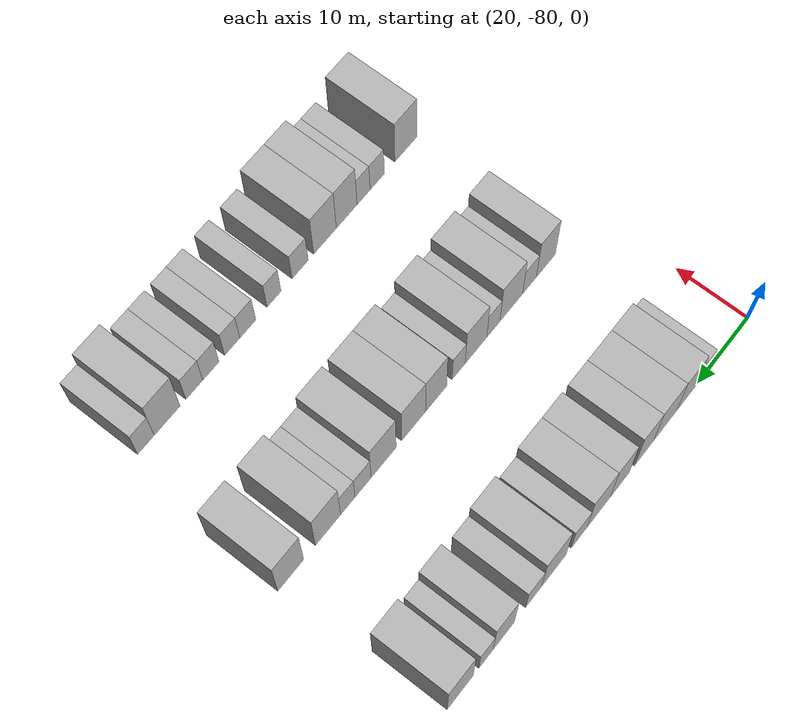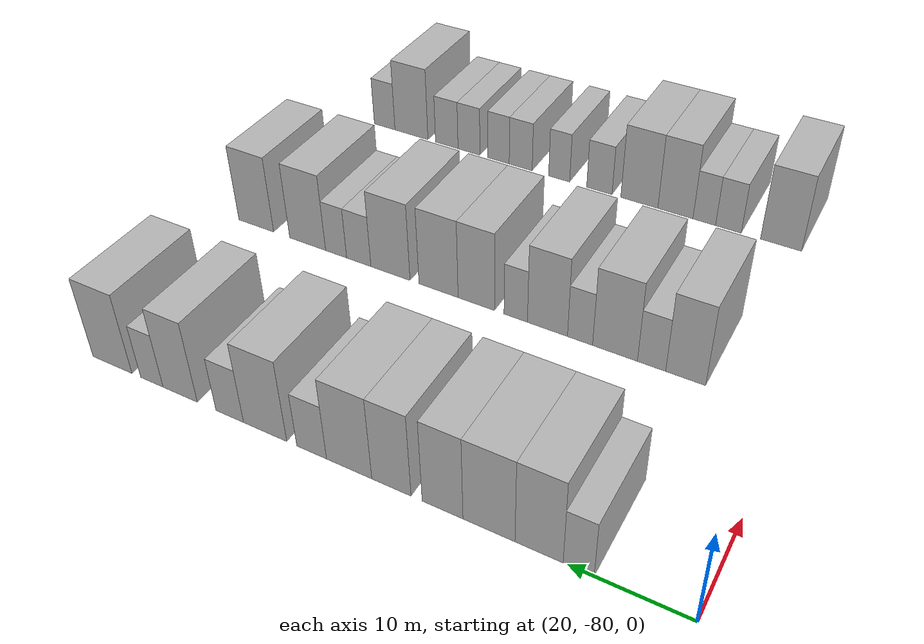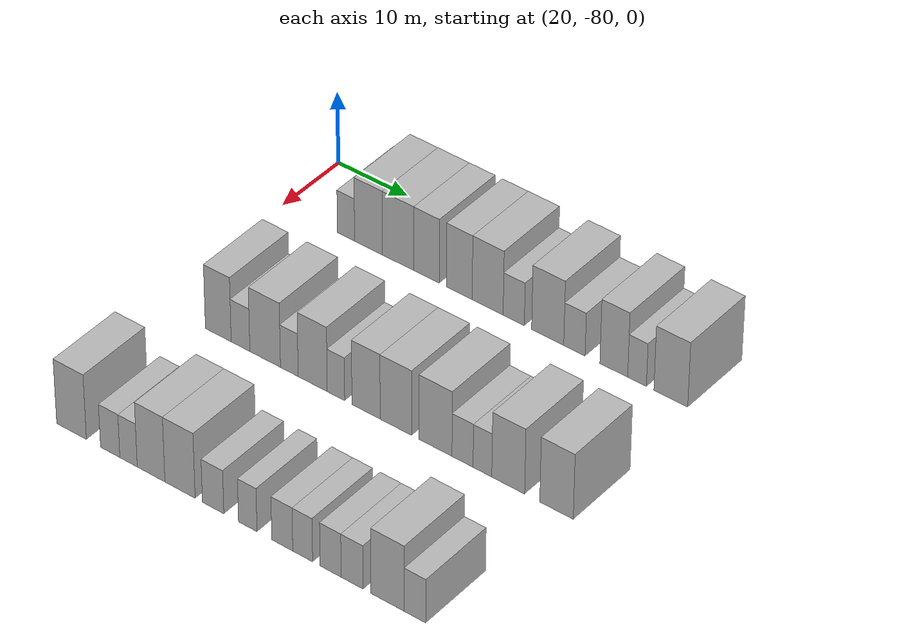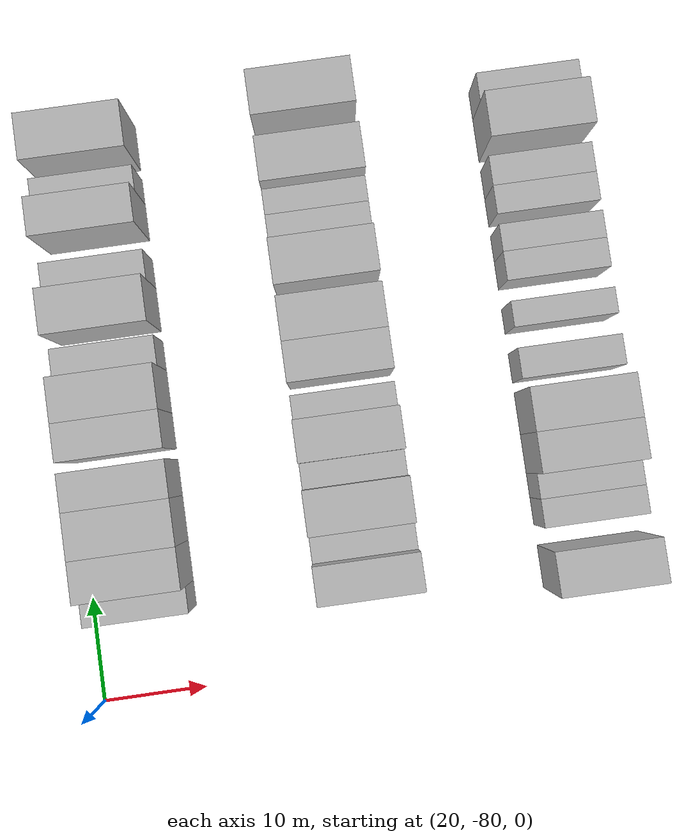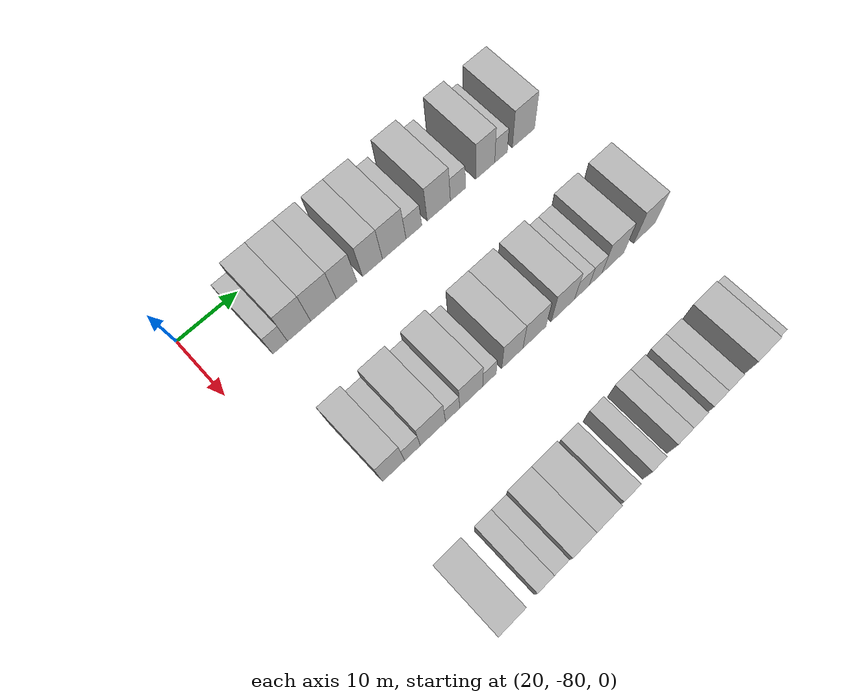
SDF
<sdf version="1.6">
 <world name="default">
  <model name="building_80">
   <static>1</static>
   <pose>25.0000 -70.8744 0 0.000000 0.000000 0.000000</pose>
   <link name="link">
    <pose>0 0 3.00 0 0 0</pose>
    <collision name="collision"><geometry><box><size>10.0000 2.4681 6.0000</size></box></geometry></collision>
    <visual name="visual">
     <cast_shadows>0</cast_shadows>
     <geometry><box><size>10.0000 2.4681 6.0000</size></box></geometry>
     <material>
      <script>
       <uri>model://HANNAS_wall/materials/scripts</uri>
       <uri>model://HANNAS_wall/materials/textures</uri>
       <name>vrc/HANNAS_wall</name>
      </script>
     </material>
    </visual>
   </link>
  </model>
  <model name="building_81">
   <static>1</static>
   <pose>25.0000 -67.6625 0 0.000000 0.000000 0.000000</pose>
   <link name="link">
    <pose>0 0 4.50 0 0 0</pose>
    <collision name="collision"><geometry><box><size>10.0000 3.9556 9.0000</size></box></geometry></collision>
    <visual name="visual">
     <cast_shadows>0</cast_shadows>
     <geometry><box><size>10.0000 3.9556 9.0000</size></box></geometry>
     <material>
      <script>
       <uri>model://HANNAS_wall/materials/scripts</uri>
       <uri>model://HANNAS_wall/materials/textures</uri>
       <name>vrc/HANNAS_wall</name>
      </script>
     </material>
    </visual>
   </link>
  </model>
  <model name="building_82">
   <static>1</static>
   <pose>25.0000 -63.4685 0 0.000000 0.000000 0.000000</pose>
   <link name="link">
    <pose>0 0 4.50 0 0 0</pose>
    <collision name="collision"><geometry><box><size>10.0000 4.4324 9.0000</size></box></geometry></collision>
    <visual name="visual">
     <cast_shadows>0</cast_shadows>
     <geometry><box><size>10.0000 4.4324 9.0000</size></box></geometry>
     <material>
      <script>
       <uri>model://HANNAS_wall/materials/scripts</uri>
       <uri>model://HANNAS_wall/materials/textures</uri>
       <name>vrc/HANNAS_wall</name>
      </script>
     </material>
    </visual>
   </link>
  </model>
  <model name="building_83">
   <static>1</static>
   <pose>25.0000 -59.4488 0 0.000000 0.000000 0.000000</pose>
   <link name="link">
    <pose>0 0 4.50 0 0 0</pose>
    <collision name="collision"><geometry><box><size>10.0000 3.6071 9.0000</size></box></geometry></collision>
    <visual name="visual">
     <cast_shadows>0</cast_shadows>
     <geometry><box><size>10.0000 3.6071 9.0000</size></box></geometry>
     <material>
      <script>
       <uri>model://HANNAS_wall/materials/scripts</uri>
       <uri>model://HANNAS_wall/materials/textures</uri>
       <name>vrc/HANNAS_wall</name>
      </script>
     </material>
    </visual>
   </link>
  </model>
  <model name="building_84">
   <static>1</static>
   <pose>25.0000 -54.8431 0 0.000000 0.000000 0.000000</pose>
   <link name="link">
    <pose>0 0 4.50 0 0 0</pose>
    <collision name="collision"><geometry><box><size>10.0000 3.6042 9.0000</size></box></geometry></collision>
    <visual name="visual">
     <cast_shadows>0</cast_shadows>
     <geometry><box><size>10.0000 3.6042 9.0000</size></box></geometry>
     <material>
      <script>
       <uri>model://HANNAS_wall/materials/scripts</uri>
       <uri>model://HANNAS_wall/materials/textures</uri>
       <name>vrc/HANNAS_wall</name>
      </script>
     </material>
    </visual>
   </link>
  </model>
  <model name="building_85">
   <static>1</static>
   <pose>25.0000 -50.8898 0 0.000000 0.000000 0.000000</pose>
   <link name="link">
    <pose>0 0 4.50 0 0 0</pose>
    <collision name="collision"><geometry><box><size>10.0000 4.3024 9.0000</size></box></geometry></collision>
    <visual name="visual">
     <cast_shadows>0</cast_shadows>
     <geometry><box><size>10.0000 4.3024 9.0000</size></box></geometry>
     <material>
      <script>
       <uri>model://HANNAS_wall/materials/scripts</uri>
       <uri>model://HANNAS_wall/materials/textures</uri>
       <name>vrc/HANNAS_wall</name>
      </script>
     </material>
    </visual>
   </link>
  </model>
  <model name="building_86">
   <static>1</static>
   <pose>25.0000 -47.2796 0 0.000000 0.000000 0.000000</pose>
   <link name="link">
    <pose>0 0 3.00 0 0 0</pose>
    <collision name="collision"><geometry><box><size>10.0000 2.9182 6.0000</size></box></geometry></collision>
    <visual name="visual">
     <cast_shadows>0</cast_shadows>
     <geometry><box><size>10.0000 2.9182 6.0000</size></box></geometry>
     <material>
      <script>
       <uri>model://HANNAS_wall/materials/scripts</uri>
       <uri>model://HANNAS_wall/materials/textures</uri>
       <name>vrc/HANNAS_wall</name>
      </script>
     </material>
    </visual>
   </link>
  </model>
  <model name="building_87">
   <static>1</static>
   <pose>25.0000 -42.6249 0 0.000000 0.000000 0.000000</pose>
   <link name="link">
    <pose>0 0 4.50 0 0 0</pose>
    <collision name="collision"><geometry><box><size>10.0000 4.3910 9.0000</size></box></geometry></collision>
    <visual name="visual">
     <cast_shadows>0</cast_shadows>
     <geometry><box><size>10.0000 4.3910 9.0000</size></box></geometry>
     <material>
      <script>
       <uri>model://HANNAS_wall/materials/scripts</uri>
       <uri>model://HANNAS_wall/materials/textures</uri>
       <name>vrc/HANNAS_wall</name>
      </script>
     </material>
    </visual>
   </link>
  </model>
  <model name="building_88">
   <static>1</static>
   <pose>25.0000 -38.9806 0 0.000000 0.000000 0.000000</pose>
   <link name="link">
    <pose>0 0 3.00 0 0 0</pose>
    <collision name="collision"><geometry><box><size>10.0000 2.8977 6.0000</size></box></geometry></collision>
    <visual name="visual">
     <cast_shadows>0</cast_shadows>
     <geometry><box><size>10.0000 2.8977 6.0000</size></box></geometry>
     <material>
      <script>
       <uri>model://HANNAS_wall/materials/scripts</uri>
       <uri>model://HANNAS_wall/materials/textures</uri>
       <name>vrc/HANNAS_wall</name>
      </script>
     </material>
    </visual>
   </link>
  </model>
  <model name="building_89">
   <static>1</static>
   <pose>25.0000 -33.6616 0 0.000000 0.000000 0.000000</pose>
   <link name="link">
    <pose>0 0 4.50 0 0 0</pose>
    <collision name="collision"><geometry><box><size>10.0000 3.7403 9.0000</size></box></geometry></collision>
    <visual name="visual">
     <cast_shadows>0</cast_shadows>
     <geometry><box><size>10.0000 3.7403 9.0000</size></box></geometry>
     <material>
      <script>
       <uri>model://HANNAS_wall/materials/scripts</uri>
       <uri>model://HANNAS_wall/materials/textures</uri>
       <name>vrc/HANNAS_wall</name>
      </script>
     </material>
    </visual>
   </link>
  </model>
  <model name="building_90">
   <static>1</static>
   <pose>25.0000 -30.5410 0 0.000000 0.000000 0.000000</pose>
   <link name="link">
    <pose>0 0 3.00 0 0 0</pose>
    <collision name="collision"><geometry><box><size>10.0000 2.5008 6.0000</size></box></geometry></collision>
    <visual name="visual">
     <cast_shadows>0</cast_shadows>
     <geometry><box><size>10.0000 2.5008 6.0000</size></box></geometry>
     <material>
      <script>
       <uri>model://HANNAS_wall/materials/scripts</uri>
       <uri>model://HANNAS_wall/materials/textures</uri>
       <name>vrc/HANNAS_wall</name>
      </script>
     </material>
    </visual>
   </link>
  </model>
  <model name="building_91">
   <static>1</static>
   <pose>25.0000 -26.0437 0 0.000000 0.000000 0.000000</pose>
   <link name="link">
    <pose>0 0 4.50 0 0 0</pose>
    <collision name="collision"><geometry><box><size>10.0000 4.4938 9.0000</size></box></geometry></collision>
    <visual name="visual">
     <cast_shadows>0</cast_shadows>
     <geometry><box><size>10.0000 4.4938 9.0000</size></box></geometry>
     <material>
      <script>
       <uri>model://HANNAS_wall/materials/scripts</uri>
       <uri>model://HANNAS_wall/materials/textures</uri>
       <name>vrc/HANNAS_wall</name>
      </script>
     </material>
    </visual>
   </link>
  </model>
  <model name="building_265">
   <static>1</static>
   <pose>47.0000 -71.0256 0 0.000000 0.000000 0.000000</pose>
   <link name="link">
    <pose>0 0 4.50 0 0 0</pose>
    <collision name="collision"><geometry><box><size>10.0000 3.6620 9.0000</size></box></geometry></collision>
    <visual name="visual">
     <cast_shadows>0</cast_shadows>
     <geometry><box><size>10.0000 3.6620 9.0000</size></box></geometry>
     <material>
      <script>
       <uri>model://HANNAS_wall/materials/scripts</uri>
       <uri>model://HANNAS_wall/materials/textures</uri>
       <name>vrc/HANNAS_wall</name>
      </script>
     </material>
    </visual>
   </link>
  </model>
  <model name="building_266">
   <static>1</static>
   <pose>47.0000 -67.8751 0 0.000000 0.000000 0.000000</pose>
   <link name="link">
    <pose>0 0 3.00 0 0 0</pose>
    <collision name="collision"><geometry><box><size>10.0000 2.6389 6.0000</size></box></geometry></collision>
    <visual name="visual">
     <cast_shadows>0</cast_shadows>
     <geometry><box><size>10.0000 2.6389 6.0000</size></box></geometry>
     <material>
      <script>
       <uri>model://HANNAS_wall/materials/scripts</uri>
       <uri>model://HANNAS_wall/materials/textures</uri>
       <name>vrc/HANNAS_wall</name>
      </script>
     </material>
    </visual>
   </link>
  </model>
  <model name="building_267">
   <static>1</static>
   <pose>47.0000 -64.4017 0 0.000000 0.000000 0.000000</pose>
   <link name="link">
    <pose>0 0 4.50 0 0 0</pose>
    <collision name="collision"><geometry><box><size>10.0000 4.3079 9.0000</size></box></geometry></collision>
    <visual name="visual">
     <cast_shadows>0</cast_shadows>
     <geometry><box><size>10.0000 4.3079 9.0000</size></box></geometry>
     <material>
      <script>
       <uri>model://HANNAS_wall/materials/scripts</uri>
       <uri>model://HANNAS_wall/materials/textures</uri>
       <name>vrc/HANNAS_wall</name>
      </script>
     </material>
    </visual>
   </link>
  </model>
  <model name="building_268">
   <static>1</static>
   <pose>47.0000 -61.0117 0 0.000000 0.000000 0.000000</pose>
   <link name="link">
    <pose>0 0 3.00 0 0 0</pose>
    <collision name="collision"><geometry><box><size>10.0000 2.4722 6.0000</size></box></geometry></collision>
    <visual name="visual">
     <cast_shadows>0</cast_shadows>
     <geometry><box><size>10.0000 2.4722 6.0000</size></box></geometry>
     <material>
      <script>
       <uri>model://HANNAS_wall/materials/scripts</uri>
       <uri>model://HANNAS_wall/materials/textures</uri>
       <name>vrc/HANNAS_wall</name>
      </script>
     </material>
    </visual>
   </link>
  </model>
  <model name="building_269">
   <static>1</static>
   <pose>47.0000 -57.7539 0 0.000000 0.000000 0.000000</pose>
   <link name="link">
    <pose>0 0 4.50 0 0 0</pose>
    <collision name="collision"><geometry><box><size>10.0000 4.0433 9.0000</size></box></geometry></collision>
    <visual name="visual">
     <cast_shadows>0</cast_shadows>
     <geometry><box><size>10.0000 4.0433 9.0000</size></box></geometry>
     <material>
      <script>
       <uri>model://HANNAS_wall/materials/scripts</uri>
       <uri>model://HANNAS_wall/materials/textures</uri>
       <name>vrc/HANNAS_wall</name>
      </script>
     </material>
    </visual>
   </link>
  </model>
  <model name="building_270">
   <static>1</static>
   <pose>47.0000 -54.5268 0 0.000000 0.000000 0.000000</pose>
   <link name="link">
    <pose>0 0 3.00 0 0 0</pose>
    <collision name="collision"><geometry><box><size>10.0000 2.4109 6.0000</size></box></geometry></collision>
    <visual name="visual">
     <cast_shadows>0</cast_shadows>
     <geometry><box><size>10.0000 2.4109 6.0000</size></box></geometry>
     <material>
      <script>
       <uri>model://HANNAS_wall/materials/scripts</uri>
       <uri>model://HANNAS_wall/materials/textures</uri>
       <name>vrc/HANNAS_wall</name>
      </script>
     </material>
    </visual>
   </link>
  </model>
  <model name="building_271">
   <static>1</static>
   <pose>47.0000 -50.3864 0 0.000000 0.000000 0.000000</pose>
   <link name="link">
    <pose>0 0 4.50 0 0 0</pose>
    <collision name="collision"><geometry><box><size>10.0000 3.8698 9.0000</size></box></geometry></collision>
    <visual name="visual">
     <cast_shadows>0</cast_shadows>
     <geometry><box><size>10.0000 3.8698 9.0000</size></box></geometry>
     <material>
      <script>
       <uri>model://HANNAS_wall/materials/scripts</uri>
       <uri>model://HANNAS_wall/materials/textures</uri>
       <name>vrc/HANNAS_wall</name>
      </script>
     </material>
    </visual>
   </link>
  </model>
  <model name="building_272">
   <static>1</static>
   <pose>47.0000 -46.3098 0 0.000000 0.000000 0.000000</pose>
   <link name="link">
    <pose>0 0 4.50 0 0 0</pose>
    <collision name="collision"><geometry><box><size>10.0000 4.2835 9.0000</size></box></geometry></collision>
    <visual name="visual">
     <cast_shadows>0</cast_shadows>
     <geometry><box><size>10.0000 4.2835 9.0000</size></box></geometry>
     <material>
      <script>
       <uri>model://HANNAS_wall/materials/scripts</uri>
       <uri>model://HANNAS_wall/materials/textures</uri>
       <name>vrc/HANNAS_wall</name>
      </script>
     </material>
    </visual>
   </link>
  </model>
  <model name="building_273">
   <static>1</static>
   <pose>47.0000 -40.9435 0 0.000000 0.000000 0.000000</pose>
   <link name="link">
    <pose>0 0 4.50 0 0 0</pose>
    <collision name="collision"><geometry><box><size>10.0000 4.4490 9.0000</size></box></geometry></collision>
    <visual name="visual">
     <cast_shadows>0</cast_shadows>
     <geometry><box><size>10.0000 4.4490 9.0000</size></box></geometry>
     <material>
      <script>
       <uri>model://HANNAS_wall/materials/scripts</uri>
       <uri>model://HANNAS_wall/materials/textures</uri>
       <name>vrc/HANNAS_wall</name>
      </script>
     </material>
    </visual>
   </link>
  </model>
  <model name="building_274">
   <static>1</static>
   <pose>47.0000 -37.3035 0 0.000000 0.000000 0.000000</pose>
   <link name="link">
    <pose>0 0 3.00 0 0 0</pose>
    <collision name="collision"><geometry><box><size>10.0000 2.8309 6.0000</size></box></geometry></collision>
    <visual name="visual">
     <cast_shadows>0</cast_shadows>
     <geometry><box><size>10.0000 2.8309 6.0000</size></box></geometry>
     <material>
      <script>
       <uri>model://HANNAS_wall/materials/scripts</uri>
       <uri>model://HANNAS_wall/materials/textures</uri>
       <name>vrc/HANNAS_wall</name>
      </script>
     </material>
    </visual>
   </link>
  </model>
  <model name="building_275">
   <static>1</static>
   <pose>47.0000 -34.6394 0 0.000000 0.000000 0.000000</pose>
   <link name="link">
    <pose>0 0 3.00 0 0 0</pose>
    <collision name="collision"><geometry><box><size>10.0000 2.4973 6.0000</size></box></geometry></collision>
    <visual name="visual">
     <cast_shadows>0</cast_shadows>
     <geometry><box><size>10.0000 2.4973 6.0000</size></box></geometry>
     <material>
      <script>
       <uri>model://HANNAS_wall/materials/scripts</uri>
       <uri>model://HANNAS_wall/materials/textures</uri>
       <name>vrc/HANNAS_wall</name>
      </script>
     </material>
    </visual>
   </link>
  </model>
  <model name="building_276">
   <static>1</static>
   <pose>47.0000 -31.2110 0 0.000000 0.000000 0.000000</pose>
   <link name="link">
    <pose>0 0 4.50 0 0 0</pose>
    <collision name="collision"><geometry><box><size>10.0000 4.3596 9.0000</size></box></geometry></collision>
    <visual name="visual">
     <cast_shadows>0</cast_shadows>
     <geometry><box><size>10.0000 4.3596 9.0000</size></box></geometry>
     <material>
      <script>
       <uri>model://HANNAS_wall/materials/scripts</uri>
       <uri>model://HANNAS_wall/materials/textures</uri>
       <name>vrc/HANNAS_wall</name>
      </script>
     </material>
    </visual>
   </link>
  </model>
  <model name="building_277">
   <static>1</static>
   <pose>47.0000 -24.8355 0 0.000000 0.000000 0.000000</pose>
   <link name="link">
    <pose>0 0 4.50 0 0 0</pose>
    <collision name="collision"><geometry><box><size>10.0000 4.3913 9.0000</size></box></geometry></collision>
    <visual name="visual">
     <cast_shadows>0</cast_shadows>
     <geometry><box><size>10.0000 4.3913 9.0000</size></box></geometry>
     <material>
      <script>
       <uri>model://HANNAS_wall/materials/scripts</uri>
       <uri>model://HANNAS_wall/materials/textures</uri>
       <name>vrc/HANNAS_wall</name>
      </script>
     </material>
    </visual>
   </link>
  </model>
  <model name="building_460">
   <static>1</static>
   <pose>69.0000 -72.9986 0 0.000000 0.000000 0.000000</pose>
   <link name="link">
    <pose>0 0 4.50 0 0 0</pose>
    <collision name="collision"><geometry><box><size>10.0000 4.1959 9.0000</size></box></geometry></collision>
    <visual name="visual">
     <cast_shadows>0</cast_shadows>
     <geometry><box><size>10.0000 4.1959 9.0000</size></box></geometry>
     <material>
      <script>
       <uri>model://HANNAS_wall/materials/scripts</uri>
       <uri>model://HANNAS_wall/materials/textures</uri>
       <name>vrc/HANNAS_wall</name>
      </script>
     </material>
    </visual>
   </link>
  </model>
  <model name="building_461">
   <static>1</static>
   <pose>69.0000 -67.5477 0 0.000000 0.000000 0.000000</pose>
   <link name="link">
    <pose>0 0 3.00 0 0 0</pose>
    <collision name="collision"><geometry><box><size>10.0000 2.7059 6.0000</size></box></geometry></collision>
    <visual name="visual">
     <cast_shadows>0</cast_shadows>
     <geometry><box><size>10.0000 2.7059 6.0000</size></box></geometry>
     <material>
      <script>
       <uri>model://HANNAS_wall/materials/scripts</uri>
       <uri>model://HANNAS_wall/materials/textures</uri>
       <name>vrc/HANNAS_wall</name>
      </script>
     </material>
    </visual>
   </link>
  </model>
  <model name="building_462">
   <static>1</static>
   <pose>69.0000 -64.9816 0 0.000000 0.000000 0.000000</pose>
   <link name="link">
    <pose>0 0 3.00 0 0 0</pose>
    <collision name="collision"><geometry><box><size>10.0000 2.4264 6.0000</size></box></geometry></collision>
    <visual name="visual">
     <cast_shadows>0</cast_shadows>
     <geometry><box><size>10.0000 2.4264 6.0000</size></box></geometry>
     <material>
      <script>
       <uri>model://HANNAS_wall/materials/scripts</uri>
       <uri>model://HANNAS_wall/materials/textures</uri>
       <name>vrc/HANNAS_wall</name>
      </script>
     </material>
    </visual>
   </link>
  </model>
  <model name="building_463">
   <static>1</static>
   <pose>69.0000 -61.8444 0 0.000000 0.000000 0.000000</pose>
   <link name="link">
    <pose>0 0 4.50 0 0 0</pose>
    <collision name="collision"><geometry><box><size>10.0000 3.8480 9.0000</size></box></geometry></collision>
    <visual name="visual">
     <cast_shadows>0</cast_shadows>
     <geometry><box><size>10.0000 3.8480 9.0000</size></box></geometry>
     <material>
      <script>
       <uri>model://HANNAS_wall/materials/scripts</uri>
       <uri>model://HANNAS_wall/materials/textures</uri>
       <name>vrc/HANNAS_wall</name>
      </script>
     </material>
    </visual>
   </link>
  </model>
  <model name="building_464">
   <static>1</static>
   <pose>69.0000 -57.8375 0 0.000000 0.000000 0.000000</pose>
   <link name="link">
    <pose>0 0 4.50 0 0 0</pose>
    <collision name="collision"><geometry><box><size>10.0000 4.1658 9.0000</size></box></geometry></collision>
    <visual name="visual">
     <cast_shadows>0</cast_shadows>
     <geometry><box><size>10.0000 4.1658 9.0000</size></box></geometry>
     <material>
      <script>
       <uri>model://HANNAS_wall/materials/scripts</uri>
       <uri>model://HANNAS_wall/materials/textures</uri>
       <name>vrc/HANNAS_wall</name>
      </script>
     </material>
    </visual>
   </link>
  </model>
  <model name="building_465">
   <static>1</static>
   <pose>69.0000 -53.2898 0 0.000000 0.000000 0.000000</pose>
   <link name="link">
    <pose>0 0 3.00 0 0 0</pose>
    <collision name="collision"><geometry><box><size>10.0000 2.9295 6.0000</size></box></geometry></collision>
    <visual name="visual">
     <cast_shadows>0</cast_shadows>
     <geometry><box><size>10.0000 2.9295 6.0000</size></box></geometry>
     <material>
      <script>
       <uri>model://HANNAS_wall/materials/scripts</uri>
       <uri>model://HANNAS_wall/materials/textures</uri>
       <name>vrc/HANNAS_wall</name>
      </script>
     </material>
    </visual>
   </link>
  </model>
  <model name="building_466">
   <static>1</static>
   <pose>69.0000 -48.5745 0 0.000000 0.000000 0.000000</pose>
   <link name="link">
    <pose>0 0 3.00 0 0 0</pose>
    <collision name="collision"><geometry><box><size>10.0000 2.5011 6.0000</size></box></geometry></collision>
    <visual name="visual">
     <cast_shadows>0</cast_shadows>
     <geometry><box><size>10.0000 2.5011 6.0000</size></box></geometry>
     <material>
      <script>
       <uri>model://HANNAS_wall/materials/scripts</uri>
       <uri>model://HANNAS_wall/materials/textures</uri>
       <name>vrc/HANNAS_wall</name>
      </script>
     </material>
    </visual>
   </link>
  </model>
  <model name="building_467">
   <static>1</static>
   <pose>69.0000 -43.9169 0 0.000000 0.000000 0.000000</pose>
   <link name="link">
    <pose>0 0 3.00 0 0 0</pose>
    <collision name="collision"><geometry><box><size>10.0000 2.8142 6.0000</size></box></geometry></collision>
    <visual name="visual">
     <cast_shadows>0</cast_shadows>
     <geometry><box><size>10.0000 2.8142 6.0000</size></box></geometry>
     <material>
      <script>
       <uri>model://HANNAS_wall/materials/scripts</uri>
       <uri>model://HANNAS_wall/materials/textures</uri>
       <name>vrc/HANNAS_wall</name>
      </script>
     </material>
    </visual>
   </link>
  </model>
  <model name="building_468">
   <static>1</static>
   <pose>69.0000 -41.1812 0 0.000000 0.000000 0.000000</pose>
   <link name="link">
    <pose>0 0 3.00 0 0 0</pose>
    <collision name="collision"><geometry><box><size>10.0000 2.6572 6.0000</size></box></geometry></collision>
    <visual name="visual">
     <cast_shadows>0</cast_shadows>
     <geometry><box><size>10.0000 2.6572 6.0000</size></box></geometry>
     <material>
      <script>
       <uri>model://HANNAS_wall/materials/scripts</uri>
       <uri>model://HANNAS_wall/materials/textures</uri>
       <name>vrc/HANNAS_wall</name>
      </script>
     </material>
    </visual>
   </link>
  </model>
  <model name="building_469">
   <static>1</static>
   <pose>69.0000 -37.4570 0 0.000000 0.000000 0.000000</pose>
   <link name="link">
    <pose>0 0 3.00 0 0 0</pose>
    <collision name="collision"><geometry><box><size>10.0000 2.7911 6.0000</size></box></geometry></collision>
    <visual name="visual">
     <cast_shadows>0</cast_shadows>
     <geometry><box><size>10.0000 2.7911 6.0000</size></box></geometry>
     <material>
      <script>
       <uri>model://HANNAS_wall/materials/scripts</uri>
       <uri>model://HANNAS_wall/materials/textures</uri>
       <name>vrc/HANNAS_wall</name>
      </script>
     </material>
    </visual>
   </link>
  </model>
  <model name="building_470">
   <static>1</static>
   <pose>69.0000 -34.6060 0 0.000000 0.000000 0.000000</pose>
   <link name="link">
    <pose>0 0 3.00 0 0 0</pose>
    <collision name="collision"><geometry><box><size>10.0000 2.9110 6.0000</size></box></geometry></collision>
    <visual name="visual">
     <cast_shadows>0</cast_shadows>
     <geometry><box><size>10.0000 2.9110 6.0000</size></box></geometry>
     <material>
      <script>
       <uri>model://HANNAS_wall/materials/scripts</uri>
       <uri>model://HANNAS_wall/materials/textures</uri>
       <name>vrc/HANNAS_wall</name>
      </script>
     </material>
    </visual>
   </link>
  </model>
  <model name="building_471">
   <static>1</static>
   <pose>69.0000 -29.9558 0 0.000000 0.000000 0.000000</pose>
   <link name="link">
    <pose>0 0 4.50 0 0 0</pose>
    <collision name="collision"><geometry><box><size>10.0000 4.3892 9.0000</size></box></geometry></collision>
    <visual name="visual">
     <cast_shadows>0</cast_shadows>
     <geometry><box><size>10.0000 4.3892 9.0000</size></box></geometry>
     <material>
      <script>
       <uri>model://HANNAS_wall/materials/scripts</uri>
       <uri>model://HANNAS_wall/materials/textures</uri>
       <name>vrc/HANNAS_wall</name>
      </script>
     </material>
    </visual>
   </link>
  </model>
  <model name="building_472">
   <static>1</static>
   <pose>69.0000 -26.3631 0 0.000000 0.000000 0.000000</pose>
   <link name="link">
    <pose>0 0 3.00 0 0 0</pose>
    <collision name="collision"><geometry><box><size>10.0000 2.7963 6.0000</size></box></geometry></collision>
    <visual name="visual">
     <cast_shadows>0</cast_shadows>
     <geometry><box><size>10.0000 2.7963 6.0000</size></box></geometry>
     <material>
      <script>
       <uri>model://HANNAS_wall/materials/scripts</uri>
       <uri>model://HANNAS_wall/materials/textures</uri>
       <name>vrc/HANNAS_wall</name>
      </script>
     </material>
    </visual>
   </link>
  </model>
 </world>
</sdf>
